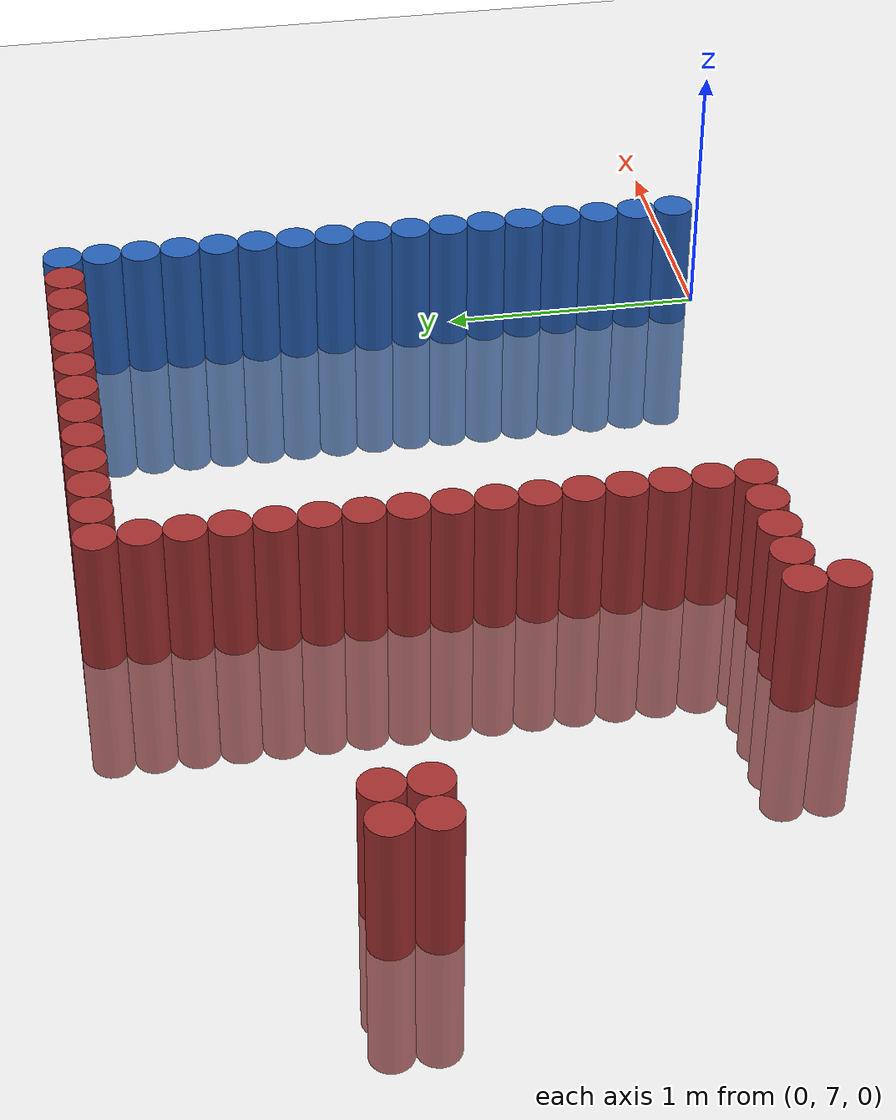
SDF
<sdf version="1.6">
 <world name="default">
  <model name="ground_plane">
   <static>1</static>
   <link name="link">
    <collision name="collision">
     <geometry><plane><normal>0 0 1</normal><size>100 100</size></plane></geometry>
     <surface><friction><ode><mu>100</mu><mu2>50</mu2></ode></friction></surface>
    </collision>
    <visual name="visual">
     <cast_shadows>0</cast_shadows>
     <geometry><plane><normal>0 0 1</normal><size>100 100</size></plane></geometry>
     <material>
      <script><uri>file://media/materials/scripts/gazebo.material</uri><name>Gazebo/Grey</name></script>
     </material>
    </visual>
   </link>
  </model>
  <model name="unit_cylinder_263">
   <static>1</static>
   <pose>-3.375000 8.625000 0.000000 0.000000 0.000000 0.000000</pose>
   <link name="link">
    <inertial>
     <mass>1</mass>
     <inertia><ixx>0.145833</ixx><ixy>0</ixy><ixz>0</ixz><iyy>0.145833</iyy><iyz>0</iyz><izz>0.125</izz></inertia>
    </inertial>
    <collision name="collision">
     <geometry><cylinder><radius>0.075000</radius><length>1</length></cylinder></geometry>
    </collision>
    <visual name="visual">
     <geometry><cylinder><radius>0.075000</radius><length>1</length></cylinder></geometry>
     <material>
      <ambient>0.648000 0.192000 0.192000 1</ambient>
      <diffuse>0.648000 0.192000 0.192000 1</diffuse>
     </material>
     <material>
      <script><name>Gazebo/Grey</name><uri>file://media/materials/scripts/gazebo.material</uri></script>
     </material>
    </visual>
   </link>
  </model>
  <model name="unit_cylinder_264">
   <static>1</static>
   <pose>-3.375000 8.775000 0.000000 0.000000 0.000000 0.000000</pose>
   <link name="link">
    <inertial>
     <mass>1</mass>
     <inertia><ixx>0.145833</ixx><ixy>0</ixy><ixz>0</ixz><iyy>0.145833</iyy><iyz>0</iyz><izz>0.125</izz></inertia>
    </inertial>
    <collision name="collision">
     <geometry><cylinder><radius>0.075000</radius><length>1</length></cylinder></geometry>
    </collision>
    <visual name="visual">
     <geometry><cylinder><radius>0.075000</radius><length>1</length></cylinder></geometry>
     <material>
      <ambient>0.648000 0.192000 0.192000 1</ambient>
      <diffuse>0.648000 0.192000 0.192000 1</diffuse>
     </material>
     <material>
      <script><name>Gazebo/Grey</name><uri>file://media/materials/scripts/gazebo.material</uri></script>
     </material>
    </visual>
   </link>
  </model>
  <model name="unit_cylinder_271">
   <static>1</static>
   <pose>-3.225000 8.625000 0.000000 0.000000 0.000000 0.000000</pose>
   <link name="link">
    <inertial>
     <mass>1</mass>
     <inertia><ixx>0.145833</ixx><ixy>0</ixy><ixz>0</ixz><iyy>0.145833</iyy><iyz>0</iyz><izz>0.125</izz></inertia>
    </inertial>
    <collision name="collision">
     <geometry><cylinder><radius>0.075000</radius><length>1</length></cylinder></geometry>
    </collision>
    <visual name="visual">
     <geometry><cylinder><radius>0.075000</radius><length>1</length></cylinder></geometry>
     <material>
      <ambient>0.648000 0.192000 0.192000 1</ambient>
      <diffuse>0.648000 0.192000 0.192000 1</diffuse>
     </material>
     <material>
      <script><name>Gazebo/Grey</name><uri>file://media/materials/scripts/gazebo.material</uri></script>
     </material>
    </visual>
   </link>
  </model>
  <model name="unit_cylinder_272">
   <static>1</static>
   <pose>-3.225000 8.775000 0.000000 0.000000 0.000000 0.000000</pose>
   <link name="link">
    <inertial>
     <mass>1</mass>
     <inertia><ixx>0.145833</ixx><ixy>0</ixy><ixz>0</ixz><iyy>0.145833</iyy><iyz>0</iyz><izz>0.125</izz></inertia>
    </inertial>
    <collision name="collision">
     <geometry><cylinder><radius>0.075000</radius><length>1</length></cylinder></geometry>
    </collision>
    <visual name="visual">
     <geometry><cylinder><radius>0.075000</radius><length>1</length></cylinder></geometry>
     <material>
      <ambient>0.648000 0.192000 0.192000 1</ambient>
      <diffuse>0.648000 0.192000 0.192000 1</diffuse>
     </material>
     <material>
      <script><name>Gazebo/Grey</name><uri>file://media/materials/scripts/gazebo.material</uri></script>
     </material>
    </visual>
   </link>
  </model>
  <model name="unit_cylinder_291">
   <static>1</static>
   <pose>-2.475000 7.125000 0.000000 0.000000 0.000000 0.000000</pose>
   <link name="link">
    <inertial>
     <mass>1</mass>
     <inertia><ixx>0.145833</ixx><ixy>0</ixy><ixz>0</ixz><iyy>0.145833</iyy><iyz>0</iyz><izz>0.125</izz></inertia>
    </inertial>
    <collision name="collision">
     <geometry><cylinder><radius>0.075000</radius><length>1</length></cylinder></geometry>
    </collision>
    <visual name="visual">
     <geometry><cylinder><radius>0.075000</radius><length>1</length></cylinder></geometry>
     <material>
      <ambient>0.648000 0.192000 0.192000 1</ambient>
      <diffuse>0.648000 0.192000 0.192000 1</diffuse>
     </material>
     <material>
      <script><name>Gazebo/Grey</name><uri>file://media/materials/scripts/gazebo.material</uri></script>
     </material>
    </visual>
   </link>
  </model>
  <model name="unit_cylinder_292">
   <static>1</static>
   <pose>-2.475000 7.275000 0.000000 0.000000 0.000000 0.000000</pose>
   <link name="link">
    <inertial>
     <mass>1</mass>
     <inertia><ixx>0.145833</ixx><ixy>0</ixy><ixz>0</ixz><iyy>0.145833</iyy><iyz>0</iyz><izz>0.125</izz></inertia>
    </inertial>
    <collision name="collision">
     <geometry><cylinder><radius>0.075000</radius><length>1</length></cylinder></geometry>
    </collision>
    <visual name="visual">
     <geometry><cylinder><radius>0.075000</radius><length>1</length></cylinder></geometry>
     <material>
      <ambient>0.648000 0.192000 0.192000 1</ambient>
      <diffuse>0.648000 0.192000 0.192000 1</diffuse>
     </material>
     <material>
      <script><name>Gazebo/Grey</name><uri>file://media/materials/scripts/gazebo.material</uri></script>
     </material>
    </visual>
   </link>
  </model>
  <model name="unit_cylinder_294">
   <static>1</static>
   <pose>-2.325000 7.275000 0.000000 0.000000 0.000000 0.000000</pose>
   <link name="link">
    <inertial>
     <mass>1</mass>
     <inertia><ixx>0.145833</ixx><ixy>0</ixy><ixz>0</ixz><iyy>0.145833</iyy><iyz>0</iyz><izz>0.125</izz></inertia>
    </inertial>
    <collision name="collision">
     <geometry><cylinder><radius>0.075000</radius><length>1</length></cylinder></geometry>
    </collision>
    <visual name="visual">
     <geometry><cylinder><radius>0.075000</radius><length>1</length></cylinder></geometry>
     <material>
      <ambient>0.648000 0.192000 0.192000 1</ambient>
      <diffuse>0.648000 0.192000 0.192000 1</diffuse>
     </material>
     <material>
      <script><name>Gazebo/Grey</name><uri>file://media/materials/scripts/gazebo.material</uri></script>
     </material>
    </visual>
   </link>
  </model>
  <model name="unit_cylinder_296">
   <static>1</static>
   <pose>-2.175000 7.275000 0.000000 0.000000 0.000000 0.000000</pose>
   <link name="link">
    <inertial>
     <mass>1</mass>
     <inertia><ixx>0.145833</ixx><ixy>0</ixy><ixz>0</ixz><iyy>0.145833</iyy><iyz>0</iyz><izz>0.125</izz></inertia>
    </inertial>
    <collision name="collision">
     <geometry><cylinder><radius>0.075000</radius><length>1</length></cylinder></geometry>
    </collision>
    <visual name="visual">
     <geometry><cylinder><radius>0.075000</radius><length>1</length></cylinder></geometry>
     <material>
      <ambient>0.648000 0.192000 0.192000 1</ambient>
      <diffuse>0.648000 0.192000 0.192000 1</diffuse>
     </material>
     <material>
      <script><name>Gazebo/Grey</name><uri>file://media/materials/scripts/gazebo.material</uri></script>
     </material>
    </visual>
   </link>
  </model>
  <model name="unit_cylinder_298">
   <static>1</static>
   <pose>-2.025000 7.275000 0.000000 0.000000 0.000000 0.000000</pose>
   <link name="link">
    <inertial>
     <mass>1</mass>
     <inertia><ixx>0.145833</ixx><ixy>0</ixy><ixz>0</ixz><iyy>0.145833</iyy><iyz>0</iyz><izz>0.125</izz></inertia>
    </inertial>
    <collision name="collision">
     <geometry><cylinder><radius>0.075000</radius><length>1</length></cylinder></geometry>
    </collision>
    <visual name="visual">
     <geometry><cylinder><radius>0.075000</radius><length>1</length></cylinder></geometry>
     <material>
      <ambient>0.648000 0.192000 0.192000 1</ambient>
      <diffuse>0.648000 0.192000 0.192000 1</diffuse>
     </material>
     <material>
      <script><name>Gazebo/Grey</name><uri>file://media/materials/scripts/gazebo.material</uri></script>
     </material>
    </visual>
   </link>
  </model>
  <model name="unit_cylinder_300">
   <static>1</static>
   <pose>-1.875000 7.275000 0.000000 0.000000 0.000000 0.000000</pose>
   <link name="link">
    <inertial>
     <mass>1</mass>
     <inertia><ixx>0.145833</ixx><ixy>0</ixy><ixz>0</ixz><iyy>0.145833</iyy><iyz>0</iyz><izz>0.125</izz></inertia>
    </inertial>
    <collision name="collision">
     <geometry><cylinder><radius>0.075000</radius><length>1</length></cylinder></geometry>
    </collision>
    <visual name="visual">
     <geometry><cylinder><radius>0.075000</radius><length>1</length></cylinder></geometry>
     <material>
      <ambient>0.648000 0.192000 0.192000 1</ambient>
      <diffuse>0.648000 0.192000 0.192000 1</diffuse>
     </material>
     <material>
      <script><name>Gazebo/Grey</name><uri>file://media/materials/scripts/gazebo.material</uri></script>
     </material>
    </visual>
   </link>
  </model>
  <model name="unit_cylinder_301">
   <static>1</static>
   <pose>-1.875000 7.425000 0.000000 0.000000 0.000000 0.000000</pose>
   <link name="link">
    <inertial>
     <mass>1</mass>
     <inertia><ixx>0.145833</ixx><ixy>0</ixy><ixz>0</ixz><iyy>0.145833</iyy><iyz>0</iyz><izz>0.125</izz></inertia>
    </inertial>
    <collision name="collision">
     <geometry><cylinder><radius>0.075000</radius><length>1</length></cylinder></geometry>
    </collision>
    <visual name="visual">
     <geometry><cylinder><radius>0.075000</radius><length>1</length></cylinder></geometry>
     <material>
      <ambient>0.648000 0.192000 0.192000 1</ambient>
      <diffuse>0.648000 0.192000 0.192000 1</diffuse>
     </material>
     <material>
      <script><name>Gazebo/Grey</name><uri>file://media/materials/scripts/gazebo.material</uri></script>
     </material>
    </visual>
   </link>
  </model>
  <model name="unit_cylinder_302">
   <static>1</static>
   <pose>-1.875000 7.575000 0.000000 0.000000 0.000000 0.000000</pose>
   <link name="link">
    <inertial>
     <mass>1</mass>
     <inertia><ixx>0.145833</ixx><ixy>0</ixy><ixz>0</ixz><iyy>0.145833</iyy><iyz>0</iyz><izz>0.125</izz></inertia>
    </inertial>
    <collision name="collision">
     <geometry><cylinder><radius>0.075000</radius><length>1</length></cylinder></geometry>
    </collision>
    <visual name="visual">
     <geometry><cylinder><radius>0.075000</radius><length>1</length></cylinder></geometry>
     <material>
      <ambient>0.648000 0.192000 0.192000 1</ambient>
      <diffuse>0.648000 0.192000 0.192000 1</diffuse>
     </material>
     <material>
      <script><name>Gazebo/Grey</name><uri>file://media/materials/scripts/gazebo.material</uri></script>
     </material>
    </visual>
   </link>
  </model>
  <model name="unit_cylinder_303">
   <static>1</static>
   <pose>-1.875000 7.725000 0.000000 0.000000 0.000000 0.000000</pose>
   <link name="link">
    <inertial>
     <mass>1</mass>
     <inertia><ixx>0.145833</ixx><ixy>0</ixy><ixz>0</ixz><iyy>0.145833</iyy><iyz>0</iyz><izz>0.125</izz></inertia>
    </inertial>
    <collision name="collision">
     <geometry><cylinder><radius>0.075000</radius><length>1</length></cylinder></geometry>
    </collision>
    <visual name="visual">
     <geometry><cylinder><radius>0.075000</radius><length>1</length></cylinder></geometry>
     <material>
      <ambient>0.648000 0.192000 0.192000 1</ambient>
      <diffuse>0.648000 0.192000 0.192000 1</diffuse>
     </material>
     <material>
      <script><name>Gazebo/Grey</name><uri>file://media/materials/scripts/gazebo.material</uri></script>
     </material>
    </visual>
   </link>
  </model>
  <model name="unit_cylinder_304">
   <static>1</static>
   <pose>-1.875000 7.875000 0.000000 0.000000 0.000000 0.000000</pose>
   <link name="link">
    <inertial>
     <mass>1</mass>
     <inertia><ixx>0.145833</ixx><ixy>0</ixy><ixz>0</ixz><iyy>0.145833</iyy><iyz>0</iyz><izz>0.125</izz></inertia>
    </inertial>
    <collision name="collision">
     <geometry><cylinder><radius>0.075000</radius><length>1</length></cylinder></geometry>
    </collision>
    <visual name="visual">
     <geometry><cylinder><radius>0.075000</radius><length>1</length></cylinder></geometry>
     <material>
      <ambient>0.648000 0.192000 0.192000 1</ambient>
      <diffuse>0.648000 0.192000 0.192000 1</diffuse>
     </material>
     <material>
      <script><name>Gazebo/Grey</name><uri>file://media/materials/scripts/gazebo.material</uri></script>
     </material>
    </visual>
   </link>
  </model>
  <model name="unit_cylinder_305">
   <static>1</static>
   <pose>-1.875000 8.025000 0.000000 0.000000 0.000000 0.000000</pose>
   <link name="link">
    <inertial>
     <mass>1</mass>
     <inertia><ixx>0.145833</ixx><ixy>0</ixy><ixz>0</ixz><iyy>0.145833</iyy><iyz>0</iyz><izz>0.125</izz></inertia>
    </inertial>
    <collision name="collision">
     <geometry><cylinder><radius>0.075000</radius><length>1</length></cylinder></geometry>
    </collision>
    <visual name="visual">
     <geometry><cylinder><radius>0.075000</radius><length>1</length></cylinder></geometry>
     <material>
      <ambient>0.648000 0.192000 0.192000 1</ambient>
      <diffuse>0.648000 0.192000 0.192000 1</diffuse>
     </material>
     <material>
      <script><name>Gazebo/Grey</name><uri>file://media/materials/scripts/gazebo.material</uri></script>
     </material>
    </visual>
   </link>
  </model>
  <model name="unit_cylinder_306">
   <static>1</static>
   <pose>-1.875000 8.175000 0.000000 0.000000 0.000000 0.000000</pose>
   <link name="link">
    <inertial>
     <mass>1</mass>
     <inertia><ixx>0.145833</ixx><ixy>0</ixy><ixz>0</ixz><iyy>0.145833</iyy><iyz>0</iyz><izz>0.125</izz></inertia>
    </inertial>
    <collision name="collision">
     <geometry><cylinder><radius>0.075000</radius><length>1</length></cylinder></geometry>
    </collision>
    <visual name="visual">
     <geometry><cylinder><radius>0.075000</radius><length>1</length></cylinder></geometry>
     <material>
      <ambient>0.648000 0.192000 0.192000 1</ambient>
      <diffuse>0.648000 0.192000 0.192000 1</diffuse>
     </material>
     <material>
      <script><name>Gazebo/Grey</name><uri>file://media/materials/scripts/gazebo.material</uri></script>
     </material>
    </visual>
   </link>
  </model>
  <model name="unit_cylinder_307">
   <static>1</static>
   <pose>-1.875000 8.325000 0.000000 0.000000 0.000000 0.000000</pose>
   <link name="link">
    <inertial>
     <mass>1</mass>
     <inertia><ixx>0.145833</ixx><ixy>0</ixy><ixz>0</ixz><iyy>0.145833</iyy><iyz>0</iyz><izz>0.125</izz></inertia>
    </inertial>
    <collision name="collision">
     <geometry><cylinder><radius>0.075000</radius><length>1</length></cylinder></geometry>
    </collision>
    <visual name="visual">
     <geometry><cylinder><radius>0.075000</radius><length>1</length></cylinder></geometry>
     <material>
      <ambient>0.648000 0.192000 0.192000 1</ambient>
      <diffuse>0.648000 0.192000 0.192000 1</diffuse>
     </material>
     <material>
      <script><name>Gazebo/Grey</name><uri>file://media/materials/scripts/gazebo.material</uri></script>
     </material>
    </visual>
   </link>
  </model>
  <model name="unit_cylinder_308">
   <static>1</static>
   <pose>-1.875000 8.475000 0.000000 0.000000 0.000000 0.000000</pose>
   <link name="link">
    <inertial>
     <mass>1</mass>
     <inertia><ixx>0.145833</ixx><ixy>0</ixy><ixz>0</ixz><iyy>0.145833</iyy><iyz>0</iyz><izz>0.125</izz></inertia>
    </inertial>
    <collision name="collision">
     <geometry><cylinder><radius>0.075000</radius><length>1</length></cylinder></geometry>
    </collision>
    <visual name="visual">
     <geometry><cylinder><radius>0.075000</radius><length>1</length></cylinder></geometry>
     <material>
      <ambient>0.648000 0.192000 0.192000 1</ambient>
      <diffuse>0.648000 0.192000 0.192000 1</diffuse>
     </material>
     <material>
      <script><name>Gazebo/Grey</name><uri>file://media/materials/scripts/gazebo.material</uri></script>
     </material>
    </visual>
   </link>
  </model>
  <model name="unit_cylinder_309">
   <static>1</static>
   <pose>-1.875000 8.625000 0.000000 0.000000 0.000000 0.000000</pose>
   <link name="link">
    <inertial>
     <mass>1</mass>
     <inertia><ixx>0.145833</ixx><ixy>0</ixy><ixz>0</ixz><iyy>0.145833</iyy><iyz>0</iyz><izz>0.125</izz></inertia>
    </inertial>
    <collision name="collision">
     <geometry><cylinder><radius>0.075000</radius><length>1</length></cylinder></geometry>
    </collision>
    <visual name="visual">
     <geometry><cylinder><radius>0.075000</radius><length>1</length></cylinder></geometry>
     <material>
      <ambient>0.648000 0.192000 0.192000 1</ambient>
      <diffuse>0.648000 0.192000 0.192000 1</diffuse>
     </material>
     <material>
      <script><name>Gazebo/Grey</name><uri>file://media/materials/scripts/gazebo.material</uri></script>
     </material>
    </visual>
   </link>
  </model>
  <model name="unit_cylinder_310">
   <static>1</static>
   <pose>-1.875000 8.775000 0.000000 0.000000 0.000000 0.000000</pose>
   <link name="link">
    <inertial>
     <mass>1</mass>
     <inertia><ixx>0.145833</ixx><ixy>0</ixy><ixz>0</ixz><iyy>0.145833</iyy><iyz>0</iyz><izz>0.125</izz></inertia>
    </inertial>
    <collision name="collision">
     <geometry><cylinder><radius>0.075000</radius><length>1</length></cylinder></geometry>
    </collision>
    <visual name="visual">
     <geometry><cylinder><radius>0.075000</radius><length>1</length></cylinder></geometry>
     <material>
      <ambient>0.648000 0.192000 0.192000 1</ambient>
      <diffuse>0.648000 0.192000 0.192000 1</diffuse>
     </material>
     <material>
      <script><name>Gazebo/Grey</name><uri>file://media/materials/scripts/gazebo.material</uri></script>
     </material>
    </visual>
   </link>
  </model>
  <model name="unit_cylinder_311">
   <static>1</static>
   <pose>-1.875000 8.925000 0.000000 0.000000 0.000000 0.000000</pose>
   <link name="link">
    <inertial>
     <mass>1</mass>
     <inertia><ixx>0.145833</ixx><ixy>0</ixy><ixz>0</ixz><iyy>0.145833</iyy><iyz>0</iyz><izz>0.125</izz></inertia>
    </inertial>
    <collision name="collision">
     <geometry><cylinder><radius>0.075000</radius><length>1</length></cylinder></geometry>
    </collision>
    <visual name="visual">
     <geometry><cylinder><radius>0.075000</radius><length>1</length></cylinder></geometry>
     <material>
      <ambient>0.648000 0.192000 0.192000 1</ambient>
      <diffuse>0.648000 0.192000 0.192000 1</diffuse>
     </material>
     <material>
      <script><name>Gazebo/Grey</name><uri>file://media/materials/scripts/gazebo.material</uri></script>
     </material>
    </visual>
   </link>
  </model>
  <model name="unit_cylinder_312">
   <static>1</static>
   <pose>-1.875000 9.075000 0.000000 0.000000 0.000000 0.000000</pose>
   <link name="link">
    <inertial>
     <mass>1</mass>
     <inertia><ixx>0.145833</ixx><ixy>0</ixy><ixz>0</ixz><iyy>0.145833</iyy><iyz>0</iyz><izz>0.125</izz></inertia>
    </inertial>
    <collision name="collision">
     <geometry><cylinder><radius>0.075000</radius><length>1</length></cylinder></geometry>
    </collision>
    <visual name="visual">
     <geometry><cylinder><radius>0.075000</radius><length>1</length></cylinder></geometry>
     <material>
      <ambient>0.648000 0.192000 0.192000 1</ambient>
      <diffuse>0.648000 0.192000 0.192000 1</diffuse>
     </material>
     <material>
      <script><name>Gazebo/Grey</name><uri>file://media/materials/scripts/gazebo.material</uri></script>
     </material>
    </visual>
   </link>
  </model>
  <model name="unit_cylinder_313">
   <static>1</static>
   <pose>-1.875000 9.225000 0.000000 0.000000 0.000000 0.000000</pose>
   <link name="link">
    <inertial>
     <mass>1</mass>
     <inertia><ixx>0.145833</ixx><ixy>0</ixy><ixz>0</ixz><iyy>0.145833</iyy><iyz>0</iyz><izz>0.125</izz></inertia>
    </inertial>
    <collision name="collision">
     <geometry><cylinder><radius>0.075000</radius><length>1</length></cylinder></geometry>
    </collision>
    <visual name="visual">
     <geometry><cylinder><radius>0.075000</radius><length>1</length></cylinder></geometry>
     <material>
      <ambient>0.648000 0.192000 0.192000 1</ambient>
      <diffuse>0.648000 0.192000 0.192000 1</diffuse>
     </material>
     <material>
      <script><name>Gazebo/Grey</name><uri>file://media/materials/scripts/gazebo.material</uri></script>
     </material>
    </visual>
   </link>
  </model>
  <model name="unit_cylinder_314">
   <static>1</static>
   <pose>-1.875000 9.375000 0.000000 0.000000 0.000000 0.000000</pose>
   <link name="link">
    <inertial>
     <mass>1</mass>
     <inertia><ixx>0.145833</ixx><ixy>0</ixy><ixz>0</ixz><iyy>0.145833</iyy><iyz>0</iyz><izz>0.125</izz></inertia>
    </inertial>
    <collision name="collision">
     <geometry><cylinder><radius>0.075000</radius><length>1</length></cylinder></geometry>
    </collision>
    <visual name="visual">
     <geometry><cylinder><radius>0.075000</radius><length>1</length></cylinder></geometry>
     <material>
      <ambient>0.648000 0.192000 0.192000 1</ambient>
      <diffuse>0.648000 0.192000 0.192000 1</diffuse>
     </material>
     <material>
      <script><name>Gazebo/Grey</name><uri>file://media/materials/scripts/gazebo.material</uri></script>
     </material>
    </visual>
   </link>
  </model>
  <model name="unit_cylinder_315">
   <static>1</static>
   <pose>-1.875000 9.525000 0.000000 0.000000 0.000000 0.000000</pose>
   <link name="link">
    <inertial>
     <mass>1</mass>
     <inertia><ixx>0.145833</ixx><ixy>0</ixy><ixz>0</ixz><iyy>0.145833</iyy><iyz>0</iyz><izz>0.125</izz></inertia>
    </inertial>
    <collision name="collision">
     <geometry><cylinder><radius>0.075000</radius><length>1</length></cylinder></geometry>
    </collision>
    <visual name="visual">
     <geometry><cylinder><radius>0.075000</radius><length>1</length></cylinder></geometry>
     <material>
      <ambient>0.648000 0.192000 0.192000 1</ambient>
      <diffuse>0.648000 0.192000 0.192000 1</diffuse>
     </material>
     <material>
      <script><name>Gazebo/Grey</name><uri>file://media/materials/scripts/gazebo.material</uri></script>
     </material>
    </visual>
   </link>
  </model>
  <model name="unit_cylinder_317">
   <static>1</static>
   <pose>-1.725000 9.525000 0.000000 0.000000 0.000000 0.000000</pose>
   <link name="link">
    <inertial>
     <mass>1</mass>
     <inertia><ixx>0.145833</ixx><ixy>0</ixy><ixz>0</ixz><iyy>0.145833</iyy><iyz>0</iyz><izz>0.125</izz></inertia>
    </inertial>
    <collision name="collision">
     <geometry><cylinder><radius>0.075000</radius><length>1</length></cylinder></geometry>
    </collision>
    <visual name="visual">
     <geometry><cylinder><radius>0.075000</radius><length>1</length></cylinder></geometry>
     <material>
      <ambient>0.648000 0.192000 0.192000 1</ambient>
      <diffuse>0.648000 0.192000 0.192000 1</diffuse>
     </material>
     <material>
      <script><name>Gazebo/Grey</name><uri>file://media/materials/scripts/gazebo.material</uri></script>
     </material>
    </visual>
   </link>
  </model>
  <model name="unit_cylinder_319">
   <static>1</static>
   <pose>-1.575000 9.525000 0.000000 0.000000 0.000000 0.000000</pose>
   <link name="link">
    <inertial>
     <mass>1</mass>
     <inertia><ixx>0.145833</ixx><ixy>0</ixy><ixz>0</ixz><iyy>0.145833</iyy><iyz>0</iyz><izz>0.125</izz></inertia>
    </inertial>
    <collision name="collision">
     <geometry><cylinder><radius>0.075000</radius><length>1</length></cylinder></geometry>
    </collision>
    <visual name="visual">
     <geometry><cylinder><radius>0.075000</radius><length>1</length></cylinder></geometry>
     <material>
      <ambient>0.648000 0.192000 0.192000 1</ambient>
      <diffuse>0.648000 0.192000 0.192000 1</diffuse>
     </material>
     <material>
      <script><name>Gazebo/Grey</name><uri>file://media/materials/scripts/gazebo.material</uri></script>
     </material>
    </visual>
   </link>
  </model>
  <model name="unit_cylinder_321">
   <static>1</static>
   <pose>-1.425000 9.525000 0.000000 0.000000 0.000000 0.000000</pose>
   <link name="link">
    <inertial>
     <mass>1</mass>
     <inertia><ixx>0.145833</ixx><ixy>0</ixy><ixz>0</ixz><iyy>0.145833</iyy><iyz>0</iyz><izz>0.125</izz></inertia>
    </inertial>
    <collision name="collision">
     <geometry><cylinder><radius>0.075000</radius><length>1</length></cylinder></geometry>
    </collision>
    <visual name="visual">
     <geometry><cylinder><radius>0.075000</radius><length>1</length></cylinder></geometry>
     <material>
      <ambient>0.648000 0.192000 0.192000 1</ambient>
      <diffuse>0.648000 0.192000 0.192000 1</diffuse>
     </material>
     <material>
      <script><name>Gazebo/Grey</name><uri>file://media/materials/scripts/gazebo.material</uri></script>
     </material>
    </visual>
   </link>
  </model>
  <model name="unit_cylinder_323">
   <static>1</static>
   <pose>-1.275000 9.525000 0.000000 0.000000 0.000000 0.000000</pose>
   <link name="link">
    <inertial>
     <mass>1</mass>
     <inertia><ixx>0.145833</ixx><ixy>0</ixy><ixz>0</ixz><iyy>0.145833</iyy><iyz>0</iyz><izz>0.125</izz></inertia>
    </inertial>
    <collision name="collision">
     <geometry><cylinder><radius>0.075000</radius><length>1</length></cylinder></geometry>
    </collision>
    <visual name="visual">
     <geometry><cylinder><radius>0.075000</radius><length>1</length></cylinder></geometry>
     <material>
      <ambient>0.648000 0.192000 0.192000 1</ambient>
      <diffuse>0.648000 0.192000 0.192000 1</diffuse>
     </material>
     <material>
      <script><name>Gazebo/Grey</name><uri>file://media/materials/scripts/gazebo.material</uri></script>
     </material>
    </visual>
   </link>
  </model>
  <model name="unit_cylinder_325">
   <static>1</static>
   <pose>-1.125000 9.525000 0.000000 0.000000 0.000000 0.000000</pose>
   <link name="link">
    <inertial>
     <mass>1</mass>
     <inertia><ixx>0.145833</ixx><ixy>0</ixy><ixz>0</ixz><iyy>0.145833</iyy><iyz>0</iyz><izz>0.125</izz></inertia>
    </inertial>
    <collision name="collision">
     <geometry><cylinder><radius>0.075000</radius><length>1</length></cylinder></geometry>
    </collision>
    <visual name="visual">
     <geometry><cylinder><radius>0.075000</radius><length>1</length></cylinder></geometry>
     <material>
      <ambient>0.648000 0.192000 0.192000 1</ambient>
      <diffuse>0.648000 0.192000 0.192000 1</diffuse>
     </material>
     <material>
      <script><name>Gazebo/Grey</name><uri>file://media/materials/scripts/gazebo.material</uri></script>
     </material>
    </visual>
   </link>
  </model>
  <model name="unit_cylinder_327">
   <static>1</static>
   <pose>-0.975000 9.525000 0.000000 0.000000 0.000000 0.000000</pose>
   <link name="link">
    <inertial>
     <mass>1</mass>
     <inertia><ixx>0.145833</ixx><ixy>0</ixy><ixz>0</ixz><iyy>0.145833</iyy><iyz>0</iyz><izz>0.125</izz></inertia>
    </inertial>
    <collision name="collision">
     <geometry><cylinder><radius>0.075000</radius><length>1</length></cylinder></geometry>
    </collision>
    <visual name="visual">
     <geometry><cylinder><radius>0.075000</radius><length>1</length></cylinder></geometry>
     <material>
      <ambient>0.648000 0.192000 0.192000 1</ambient>
      <diffuse>0.648000 0.192000 0.192000 1</diffuse>
     </material>
     <material>
      <script><name>Gazebo/Grey</name><uri>file://media/materials/scripts/gazebo.material</uri></script>
     </material>
    </visual>
   </link>
  </model>
  <model name="unit_cylinder_329">
   <static>1</static>
   <pose>-0.825000 9.525000 0.000000 0.000000 0.000000 0.000000</pose>
   <link name="link">
    <inertial>
     <mass>1</mass>
     <inertia><ixx>0.145833</ixx><ixy>0</ixy><ixz>0</ixz><iyy>0.145833</iyy><iyz>0</iyz><izz>0.125</izz></inertia>
    </inertial>
    <collision name="collision">
     <geometry><cylinder><radius>0.075000</radius><length>1</length></cylinder></geometry>
    </collision>
    <visual name="visual">
     <geometry><cylinder><radius>0.075000</radius><length>1</length></cylinder></geometry>
     <material>
      <ambient>0.648000 0.192000 0.192000 1</ambient>
      <diffuse>0.648000 0.192000 0.192000 1</diffuse>
     </material>
     <material>
      <script><name>Gazebo/Grey</name><uri>file://media/materials/scripts/gazebo.material</uri></script>
     </material>
    </visual>
   </link>
  </model>
  <model name="unit_cylinder_331">
   <static>1</static>
   <pose>-0.675000 9.525000 0.000000 0.000000 0.000000 0.000000</pose>
   <link name="link">
    <inertial>
     <mass>1</mass>
     <inertia><ixx>0.145833</ixx><ixy>0</ixy><ixz>0</ixz><iyy>0.145833</iyy><iyz>0</iyz><izz>0.125</izz></inertia>
    </inertial>
    <collision name="collision">
     <geometry><cylinder><radius>0.075000</radius><length>1</length></cylinder></geometry>
    </collision>
    <visual name="visual">
     <geometry><cylinder><radius>0.075000</radius><length>1</length></cylinder></geometry>
     <material>
      <ambient>0.648000 0.192000 0.192000 1</ambient>
      <diffuse>0.648000 0.192000 0.192000 1</diffuse>
     </material>
     <material>
      <script><name>Gazebo/Grey</name><uri>file://media/materials/scripts/gazebo.material</uri></script>
     </material>
    </visual>
   </link>
  </model>
  <model name="unit_cylinder_333">
   <static>1</static>
   <pose>-0.525000 9.525000 0.000000 0.000000 0.000000 0.000000</pose>
   <link name="link">
    <inertial>
     <mass>1</mass>
     <inertia><ixx>0.145833</ixx><ixy>0</ixy><ixz>0</ixz><iyy>0.145833</iyy><iyz>0</iyz><izz>0.125</izz></inertia>
    </inertial>
    <collision name="collision">
     <geometry><cylinder><radius>0.075000</radius><length>1</length></cylinder></geometry>
    </collision>
    <visual name="visual">
     <geometry><cylinder><radius>0.075000</radius><length>1</length></cylinder></geometry>
     <material>
      <ambient>0.648000 0.192000 0.192000 1</ambient>
      <diffuse>0.648000 0.192000 0.192000 1</diffuse>
     </material>
     <material>
      <script><name>Gazebo/Grey</name><uri>file://media/materials/scripts/gazebo.material</uri></script>
     </material>
    </visual>
   </link>
  </model>
  <model name="unit_cylinder_335">
   <static>1</static>
   <pose>-0.375000 9.525000 0.000000 0.000000 0.000000 0.000000</pose>
   <link name="link">
    <inertial>
     <mass>1</mass>
     <inertia><ixx>0.145833</ixx><ixy>0</ixy><ixz>0</ixz><iyy>0.145833</iyy><iyz>0</iyz><izz>0.125</izz></inertia>
    </inertial>
    <collision name="collision">
     <geometry><cylinder><radius>0.075000</radius><length>1</length></cylinder></geometry>
    </collision>
    <visual name="visual">
     <geometry><cylinder><radius>0.075000</radius><length>1</length></cylinder></geometry>
     <material>
      <ambient>0.648000 0.192000 0.192000 1</ambient>
      <diffuse>0.648000 0.192000 0.192000 1</diffuse>
     </material>
     <material>
      <script><name>Gazebo/Grey</name><uri>file://media/materials/scripts/gazebo.material</uri></script>
     </material>
    </visual>
   </link>
  </model>
  <model name="unit_cylinder_337">
   <static>1</static>
   <pose>-0.225000 9.525000 0.000000 0.000000 0.000000 0.000000</pose>
   <link name="link">
    <inertial>
     <mass>1</mass>
     <inertia><ixx>0.145833</ixx><ixy>0</ixy><ixz>0</ixz><iyy>0.145833</iyy><iyz>0</iyz><izz>0.125</izz></inertia>
    </inertial>
    <collision name="collision">
     <geometry><cylinder><radius>0.075000</radius><length>1</length></cylinder></geometry>
    </collision>
    <visual name="visual">
     <geometry><cylinder><radius>0.075000</radius><length>1</length></cylinder></geometry>
     <material>
      <ambient>0.648000 0.192000 0.192000 1</ambient>
      <diffuse>0.648000 0.192000 0.192000 1</diffuse>
     </material>
     <material>
      <script><name>Gazebo/Grey</name><uri>file://media/materials/scripts/gazebo.material</uri></script>
     </material>
    </visual>
   </link>
  </model>
  <model name="unit_cylinder_351">
   <static>1</static>
   <pose>-0.075000 7.125000 0.000000 0.000000 0.000000 0.000000</pose>
   <link name="link">
    <inertial>
     <mass>1</mass>
     <inertia><ixx>0.145833</ixx><ixy>0</ixy><ixz>0</ixz><iyy>0.145833</iyy><iyz>0</iyz><izz>0.125</izz></inertia>
    </inertial>
    <collision name="collision">
     <geometry><cylinder><radius>0.075000</radius><length>1</length></cylinder></geometry>
    </collision>
    <visual name="visual">
     <geometry><cylinder><radius>0.075000</radius><length>1</length></cylinder></geometry>
     <material>
      <ambient>0.152000 0.379000 0.720000 1</ambient>
      <diffuse>0.152000 0.379000 0.720000 1</diffuse>
     </material>
     <material>
      <script><name>Gazebo/Grey</name><uri>file://media/materials/scripts/gazebo.material</uri></script>
     </material>
    </visual>
   </link>
  </model>
  <model name="unit_cylinder_352">
   <static>1</static>
   <pose>-0.075000 7.275000 0.000000 0.000000 0.000000 0.000000</pose>
   <link name="link">
    <inertial>
     <mass>1</mass>
     <inertia><ixx>0.145833</ixx><ixy>0</ixy><ixz>0</ixz><iyy>0.145833</iyy><iyz>0</iyz><izz>0.125</izz></inertia>
    </inertial>
    <collision name="collision">
     <geometry><cylinder><radius>0.075000</radius><length>1</length></cylinder></geometry>
    </collision>
    <visual name="visual">
     <geometry><cylinder><radius>0.075000</radius><length>1</length></cylinder></geometry>
     <material>
      <ambient>0.152000 0.379000 0.720000 1</ambient>
      <diffuse>0.152000 0.379000 0.720000 1</diffuse>
     </material>
     <material>
      <script><name>Gazebo/Grey</name><uri>file://media/materials/scripts/gazebo.material</uri></script>
     </material>
    </visual>
   </link>
  </model>
  <model name="unit_cylinder_353">
   <static>1</static>
   <pose>-0.075000 7.425000 0.000000 0.000000 0.000000 0.000000</pose>
   <link name="link">
    <inertial>
     <mass>1</mass>
     <inertia><ixx>0.145833</ixx><ixy>0</ixy><ixz>0</ixz><iyy>0.145833</iyy><iyz>0</iyz><izz>0.125</izz></inertia>
    </inertial>
    <collision name="collision">
     <geometry><cylinder><radius>0.075000</radius><length>1</length></cylinder></geometry>
    </collision>
    <visual name="visual">
     <geometry><cylinder><radius>0.075000</radius><length>1</length></cylinder></geometry>
     <material>
      <ambient>0.152000 0.379000 0.720000 1</ambient>
      <diffuse>0.152000 0.379000 0.720000 1</diffuse>
     </material>
     <material>
      <script><name>Gazebo/Grey</name><uri>file://media/materials/scripts/gazebo.material</uri></script>
     </material>
    </visual>
   </link>
  </model>
  <model name="unit_cylinder_354">
   <static>1</static>
   <pose>-0.075000 7.575000 0.000000 0.000000 0.000000 0.000000</pose>
   <link name="link">
    <inertial>
     <mass>1</mass>
     <inertia><ixx>0.145833</ixx><ixy>0</ixy><ixz>0</ixz><iyy>0.145833</iyy><iyz>0</iyz><izz>0.125</izz></inertia>
    </inertial>
    <collision name="collision">
     <geometry><cylinder><radius>0.075000</radius><length>1</length></cylinder></geometry>
    </collision>
    <visual name="visual">
     <geometry><cylinder><radius>0.075000</radius><length>1</length></cylinder></geometry>
     <material>
      <ambient>0.152000 0.379000 0.720000 1</ambient>
      <diffuse>0.152000 0.379000 0.720000 1</diffuse>
     </material>
     <material>
      <script><name>Gazebo/Grey</name><uri>file://media/materials/scripts/gazebo.material</uri></script>
     </material>
    </visual>
   </link>
  </model>
  <model name="unit_cylinder_355">
   <static>1</static>
   <pose>-0.075000 7.725000 0.000000 0.000000 0.000000 0.000000</pose>
   <link name="link">
    <inertial>
     <mass>1</mass>
     <inertia><ixx>0.145833</ixx><ixy>0</ixy><ixz>0</ixz><iyy>0.145833</iyy><iyz>0</iyz><izz>0.125</izz></inertia>
    </inertial>
    <collision name="collision">
     <geometry><cylinder><radius>0.075000</radius><length>1</length></cylinder></geometry>
    </collision>
    <visual name="visual">
     <geometry><cylinder><radius>0.075000</radius><length>1</length></cylinder></geometry>
     <material>
      <ambient>0.152000 0.379000 0.720000 1</ambient>
      <diffuse>0.152000 0.379000 0.720000 1</diffuse>
     </material>
     <material>
      <script><name>Gazebo/Grey</name><uri>file://media/materials/scripts/gazebo.material</uri></script>
     </material>
    </visual>
   </link>
  </model>
  <model name="unit_cylinder_356">
   <static>1</static>
   <pose>-0.075000 7.875000 0.000000 0.000000 0.000000 0.000000</pose>
   <link name="link">
    <inertial>
     <mass>1</mass>
     <inertia><ixx>0.145833</ixx><ixy>0</ixy><ixz>0</ixz><iyy>0.145833</iyy><iyz>0</iyz><izz>0.125</izz></inertia>
    </inertial>
    <collision name="collision">
     <geometry><cylinder><radius>0.075000</radius><length>1</length></cylinder></geometry>
    </collision>
    <visual name="visual">
     <geometry><cylinder><radius>0.075000</radius><length>1</length></cylinder></geometry>
     <material>
      <ambient>0.152000 0.379000 0.720000 1</ambient>
      <diffuse>0.152000 0.379000 0.720000 1</diffuse>
     </material>
     <material>
      <script><name>Gazebo/Grey</name><uri>file://media/materials/scripts/gazebo.material</uri></script>
     </material>
    </visual>
   </link>
  </model>
  <model name="unit_cylinder_357">
   <static>1</static>
   <pose>-0.075000 8.025000 0.000000 0.000000 0.000000 0.000000</pose>
   <link name="link">
    <inertial>
     <mass>1</mass>
     <inertia><ixx>0.145833</ixx><ixy>0</ixy><ixz>0</ixz><iyy>0.145833</iyy><iyz>0</iyz><izz>0.125</izz></inertia>
    </inertial>
    <collision name="collision">
     <geometry><cylinder><radius>0.075000</radius><length>1</length></cylinder></geometry>
    </collision>
    <visual name="visual">
     <geometry><cylinder><radius>0.075000</radius><length>1</length></cylinder></geometry>
     <material>
      <ambient>0.152000 0.379000 0.720000 1</ambient>
      <diffuse>0.152000 0.379000 0.720000 1</diffuse>
     </material>
     <material>
      <script><name>Gazebo/Grey</name><uri>file://media/materials/scripts/gazebo.material</uri></script>
     </material>
    </visual>
   </link>
  </model>
  <model name="unit_cylinder_358">
   <static>1</static>
   <pose>-0.075000 8.175000 0.000000 0.000000 0.000000 0.000000</pose>
   <link name="link">
    <inertial>
     <mass>1</mass>
     <inertia><ixx>0.145833</ixx><ixy>0</ixy><ixz>0</ixz><iyy>0.145833</iyy><iyz>0</iyz><izz>0.125</izz></inertia>
    </inertial>
    <collision name="collision">
     <geometry><cylinder><radius>0.075000</radius><length>1</length></cylinder></geometry>
    </collision>
    <visual name="visual">
     <geometry><cylinder><radius>0.075000</radius><length>1</length></cylinder></geometry>
     <material>
      <ambient>0.152000 0.379000 0.720000 1</ambient>
      <diffuse>0.152000 0.379000 0.720000 1</diffuse>
     </material>
     <material>
      <script><name>Gazebo/Grey</name><uri>file://media/materials/scripts/gazebo.material</uri></script>
     </material>
    </visual>
   </link>
  </model>
  <model name="unit_cylinder_359">
   <static>1</static>
   <pose>-0.075000 8.325000 0.000000 0.000000 0.000000 0.000000</pose>
   <link name="link">
    <inertial>
     <mass>1</mass>
     <inertia><ixx>0.145833</ixx><ixy>0</ixy><ixz>0</ixz><iyy>0.145833</iyy><iyz>0</iyz><izz>0.125</izz></inertia>
    </inertial>
    <collision name="collision">
     <geometry><cylinder><radius>0.075000</radius><length>1</length></cylinder></geometry>
    </collision>
    <visual name="visual">
     <geometry><cylinder><radius>0.075000</radius><length>1</length></cylinder></geometry>
     <material>
      <ambient>0.152000 0.379000 0.720000 1</ambient>
      <diffuse>0.152000 0.379000 0.720000 1</diffuse>
     </material>
     <material>
      <script><name>Gazebo/Grey</name><uri>file://media/materials/scripts/gazebo.material</uri></script>
     </material>
    </visual>
   </link>
  </model>
  <model name="unit_cylinder_360">
   <static>1</static>
   <pose>-0.075000 8.475000 0.000000 0.000000 0.000000 0.000000</pose>
   <link name="link">
    <inertial>
     <mass>1</mass>
     <inertia><ixx>0.145833</ixx><ixy>0</ixy><ixz>0</ixz><iyy>0.145833</iyy><iyz>0</iyz><izz>0.125</izz></inertia>
    </inertial>
    <collision name="collision">
     <geometry><cylinder><radius>0.075000</radius><length>1</length></cylinder></geometry>
    </collision>
    <visual name="visual">
     <geometry><cylinder><radius>0.075000</radius><length>1</length></cylinder></geometry>
     <material>
      <ambient>0.152000 0.379000 0.720000 1</ambient>
      <diffuse>0.152000 0.379000 0.720000 1</diffuse>
     </material>
     <material>
      <script><name>Gazebo/Grey</name><uri>file://media/materials/scripts/gazebo.material</uri></script>
     </material>
    </visual>
   </link>
  </model>
  <model name="unit_cylinder_361">
   <static>1</static>
   <pose>-0.075000 8.625000 0.000000 0.000000 0.000000 0.000000</pose>
   <link name="link">
    <inertial>
     <mass>1</mass>
     <inertia><ixx>0.145833</ixx><ixy>0</ixy><ixz>0</ixz><iyy>0.145833</iyy><iyz>0</iyz><izz>0.125</izz></inertia>
    </inertial>
    <collision name="collision">
     <geometry><cylinder><radius>0.075000</radius><length>1</length></cylinder></geometry>
    </collision>
    <visual name="visual">
     <geometry><cylinder><radius>0.075000</radius><length>1</length></cylinder></geometry>
     <material>
      <ambient>0.152000 0.379000 0.720000 1</ambient>
      <diffuse>0.152000 0.379000 0.720000 1</diffuse>
     </material>
     <material>
      <script><name>Gazebo/Grey</name><uri>file://media/materials/scripts/gazebo.material</uri></script>
     </material>
    </visual>
   </link>
  </model>
  <model name="unit_cylinder_362">
   <static>1</static>
   <pose>-0.075000 8.775000 0.000000 0.000000 0.000000 0.000000</pose>
   <link name="link">
    <inertial>
     <mass>1</mass>
     <inertia><ixx>0.145833</ixx><ixy>0</ixy><ixz>0</ixz><iyy>0.145833</iyy><iyz>0</iyz><izz>0.125</izz></inertia>
    </inertial>
    <collision name="collision">
     <geometry><cylinder><radius>0.075000</radius><length>1</length></cylinder></geometry>
    </collision>
    <visual name="visual">
     <geometry><cylinder><radius>0.075000</radius><length>1</length></cylinder></geometry>
     <material>
      <ambient>0.152000 0.379000 0.720000 1</ambient>
      <diffuse>0.152000 0.379000 0.720000 1</diffuse>
     </material>
     <material>
      <script><name>Gazebo/Grey</name><uri>file://media/materials/scripts/gazebo.material</uri></script>
     </material>
    </visual>
   </link>
  </model>
  <model name="unit_cylinder_363">
   <static>1</static>
   <pose>-0.075000 8.925000 0.000000 0.000000 0.000000 0.000000</pose>
   <link name="link">
    <inertial>
     <mass>1</mass>
     <inertia><ixx>0.145833</ixx><ixy>0</ixy><ixz>0</ixz><iyy>0.145833</iyy><iyz>0</iyz><izz>0.125</izz></inertia>
    </inertial>
    <collision name="collision">
     <geometry><cylinder><radius>0.075000</radius><length>1</length></cylinder></geometry>
    </collision>
    <visual name="visual">
     <geometry><cylinder><radius>0.075000</radius><length>1</length></cylinder></geometry>
     <material>
      <ambient>0.152000 0.379000 0.720000 1</ambient>
      <diffuse>0.152000 0.379000 0.720000 1</diffuse>
     </material>
     <material>
      <script><name>Gazebo/Grey</name><uri>file://media/materials/scripts/gazebo.material</uri></script>
     </material>
    </visual>
   </link>
  </model>
  <model name="unit_cylinder_364">
   <static>1</static>
   <pose>-0.075000 9.075000 0.000000 0.000000 0.000000 0.000000</pose>
   <link name="link">
    <inertial>
     <mass>1</mass>
     <inertia><ixx>0.145833</ixx><ixy>0</ixy><ixz>0</ixz><iyy>0.145833</iyy><iyz>0</iyz><izz>0.125</izz></inertia>
    </inertial>
    <collision name="collision">
     <geometry><cylinder><radius>0.075000</radius><length>1</length></cylinder></geometry>
    </collision>
    <visual name="visual">
     <geometry><cylinder><radius>0.075000</radius><length>1</length></cylinder></geometry>
     <material>
      <ambient>0.152000 0.379000 0.720000 1</ambient>
      <diffuse>0.152000 0.379000 0.720000 1</diffuse>
     </material>
     <material>
      <script><name>Gazebo/Grey</name><uri>file://media/materials/scripts/gazebo.material</uri></script>
     </material>
    </visual>
   </link>
  </model>
  <model name="unit_cylinder_365">
   <static>1</static>
   <pose>-0.075000 9.225000 0.000000 0.000000 0.000000 0.000000</pose>
   <link name="link">
    <inertial>
     <mass>1</mass>
     <inertia><ixx>0.145833</ixx><ixy>0</ixy><ixz>0</ixz><iyy>0.145833</iyy><iyz>0</iyz><izz>0.125</izz></inertia>
    </inertial>
    <collision name="collision">
     <geometry><cylinder><radius>0.075000</radius><length>1</length></cylinder></geometry>
    </collision>
    <visual name="visual">
     <geometry><cylinder><radius>0.075000</radius><length>1</length></cylinder></geometry>
     <material>
      <ambient>0.152000 0.379000 0.720000 1</ambient>
      <diffuse>0.152000 0.379000 0.720000 1</diffuse>
     </material>
     <material>
      <script><name>Gazebo/Grey</name><uri>file://media/materials/scripts/gazebo.material</uri></script>
     </material>
    </visual>
   </link>
  </model>
  <model name="unit_cylinder_366">
   <static>1</static>
   <pose>-0.075000 9.375000 0.000000 0.000000 0.000000 0.000000</pose>
   <link name="link">
    <inertial>
     <mass>1</mass>
     <inertia><ixx>0.145833</ixx><ixy>0</ixy><ixz>0</ixz><iyy>0.145833</iyy><iyz>0</iyz><izz>0.125</izz></inertia>
    </inertial>
    <collision name="collision">
     <geometry><cylinder><radius>0.075000</radius><length>1</length></cylinder></geometry>
    </collision>
    <visual name="visual">
     <geometry><cylinder><radius>0.075000</radius><length>1</length></cylinder></geometry>
     <material>
      <ambient>0.152000 0.379000 0.720000 1</ambient>
      <diffuse>0.152000 0.379000 0.720000 1</diffuse>
     </material>
     <material>
      <script><name>Gazebo/Grey</name><uri>file://media/materials/scripts/gazebo.material</uri></script>
     </material>
    </visual>
   </link>
  </model>
  <model name="unit_cylinder_367">
   <static>1</static>
   <pose>-0.075000 9.525000 0.000000 0.000000 0.000000 0.000000</pose>
   <link name="link">
    <inertial>
     <mass>1</mass>
     <inertia><ixx>0.145833</ixx><ixy>0</ixy><ixz>0</ixz><iyy>0.145833</iyy><iyz>0</iyz><izz>0.125</izz></inertia>
    </inertial>
    <collision name="collision">
     <geometry><cylinder><radius>0.075000</radius><length>1</length></cylinder></geometry>
    </collision>
    <visual name="visual">
     <geometry><cylinder><radius>0.075000</radius><length>1</length></cylinder></geometry>
     <material>
      <ambient>0.152000 0.379000 0.720000 1</ambient>
      <diffuse>0.152000 0.379000 0.720000 1</diffuse>
     </material>
     <material>
      <script><name>Gazebo/Grey</name><uri>file://media/materials/scripts/gazebo.material</uri></script>
     </material>
    </visual>
   </link>
  </model>
 </world>
</sdf>
